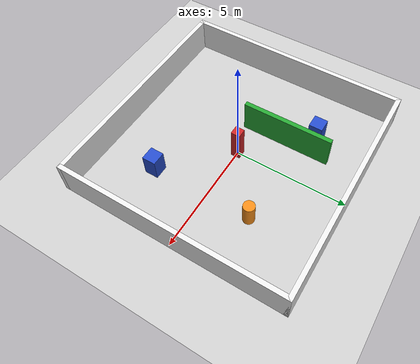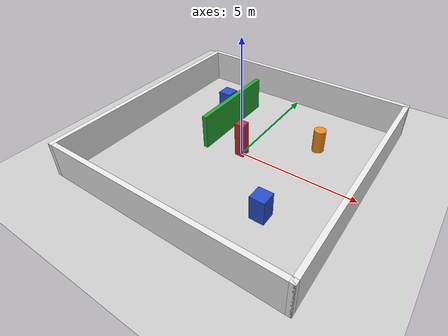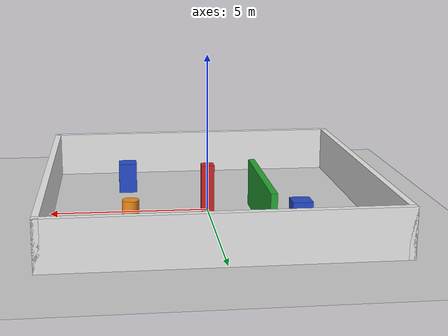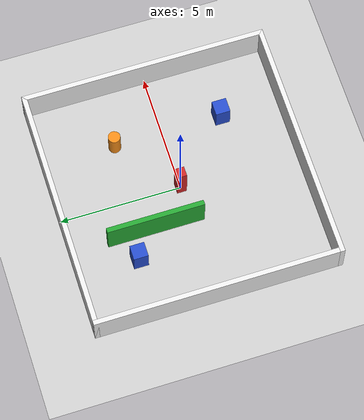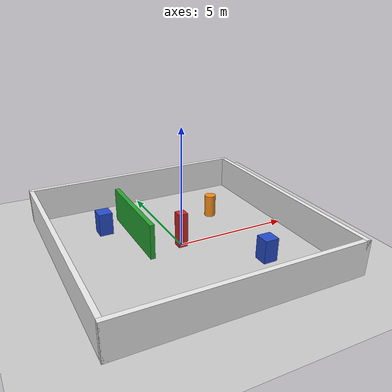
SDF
<?xml version="1.0"?>
<sdf version="1.6">
  <world name="slam_world">

    <!-- ========== Lighting ========== -->
    <light name="sun" type="directional">
      <cast_shadows>true</cast_shadows>
      <pose>0 0 10 0 0 0</pose>
      <diffuse>0.8 0.8 0.8 1</diffuse>
      <specular>0.2 0.2 0.2 1</specular>
      <direction>-0.5 0.1 -0.9</direction>
    </light>

    <!-- ========== Ground plane ========== -->
    <model name="ground_plane">
      <static>true</static>
      <link name="link">
        <collision name="collision">
          <geometry><plane><normal>0 0 1</normal></plane></geometry>
          <surface>
            <friction><ode><mu>100</mu><mu2>50</mu2></ode></friction>
          </surface>
        </collision>
        <visual name="visual">
          <geometry><plane><normal>0 0 1</normal><size>100 100</size></plane></geometry>
          <material>
            <script>
              <uri>file://media/materials/scripts/gazebo.material</uri>
              <name>Gazebo/Grey</name>
            </script>
          </material>
        </visual>
      </link>
    </model>

    <!-- South wall  (y = -5) -->
    <model name="wall_south">
      <static>true</static>
      <pose>0 -5 0.75 0 0 0</pose>
      <link name="link">
        <collision name="collision">
          <geometry><box><size>10.2 0.2 1.5</size></box></geometry>
        </collision>
        <visual name="visual">
          <geometry><box><size>10.2 0.2 1.5</size></box></geometry>
          <material><script><uri>file://media/materials/scripts/gazebo.material</uri>
            <name>Gazebo/White</name></script></material>
        </visual>
      </link>
    </model>

    <!-- North wall  (y = +5) -->
    <model name="wall_north">
      <static>true</static>
      <pose>0 5 0.75 0 0 0</pose>
      <link name="link">
        <collision name="collision">
          <geometry><box><size>10.2 0.2 1.5</size></box></geometry>
        </collision>
        <visual name="visual">
          <geometry><box><size>10.2 0.2 1.5</size></box></geometry>
          <material><script><uri>file://media/materials/scripts/gazebo.material</uri>
            <name>Gazebo/White</name></script></material>
        </visual>
      </link>
    </model>

    <!-- West wall  (x = -5) -->
    <model name="wall_west">
      <static>true</static>
      <pose>-5 0 0.75 0 0 0</pose>
      <link name="link">
        <collision name="collision">
          <geometry><box><size>0.2 10.2 1.5</size></box></geometry>
        </collision>
        <visual name="visual">
          <geometry><box><size>0.2 10.2 1.5</size></box></geometry>
          <material><script><uri>file://media/materials/scripts/gazebo.material</uri>
            <name>Gazebo/White</name></script></material>
        </visual>
      </link>
    </model>

    <!-- East wall  (x = +5) -->
    <model name="wall_east">
      <static>true</static>
      <pose>5 0 0.75 0 0 0</pose>
      <link name="link">
        <collision name="collision">
          <geometry><box><size>0.2 10.2 1.5</size></box></geometry>
        </collision>
        <visual name="visual">
          <geometry><box><size>0.2 10.2 1.5</size></box></geometry>
          <material><script><uri>file://media/materials/scripts/gazebo.material</uri>
            <name>Gazebo/White</name></script></material>
        </visual>
      </link>
    </model>

    <!-- Central pillar -->
    <model name="pillar_centre">
      <static>true</static>
      <pose>0 0 0.75 0 0 0</pose>
      <link name="link">
        <collision name="collision">
          <geometry><box><size>0.4 0.4 1.5</size></box></geometry>
        </collision>
        <visual name="visual">
          <geometry><box><size>0.4 0.4 1.5</size></box></geometry>
          <material><script><uri>file://media/materials/scripts/gazebo.material</uri>
            <name>Gazebo/Red</name></script></material>
        </visual>
      </link>
    </model>

    <!-- Box obstacle — NW quadrant -->
    <model name="box_nw">
      <static>true</static>
      <pose>-2.5 2.5 0.5 0 0 0</pose>
      <link name="link">
        <collision name="collision">
          <geometry><box><size>0.6 0.6 1.0</size></box></geometry>
        </collision>
        <visual name="visual">
          <geometry><box><size>0.6 0.6 1.0</size></box></geometry>
          <material><script><uri>file://media/materials/scripts/gazebo.material</uri>
            <name>Gazebo/Blue</name></script></material>
        </visual>
      </link>
    </model>

    <!-- Box obstacle — SE quadrant -->
    <model name="box_se">
      <static>true</static>
      <pose>2.5 -2.5 0.5 0 0 0</pose>
      <link name="link">
        <collision name="collision">
          <geometry><box><size>0.6 0.6 1.0</size></box></geometry>
        </collision>
        <visual name="visual">
          <geometry><box><size>0.6 0.6 1.0</size></box></geometry>
          <material><script><uri>file://media/materials/scripts/gazebo.material</uri>
            <name>Gazebo/Blue</name></script></material>
        </visual>
      </link>
    </model>

    <!-- Horizontal inner wall — splits the room roughly in half
         with a gap on the east side so the robot can pass through -->
    <model name="inner_wall">
      <static>true</static>
      <pose>-1.5 1.5 0.75 0 0 1.5708</pose>
      <link name="link">
        <collision name="collision">
          <geometry><box><size>4.0 0.2 1.5</size></box></geometry>
        </collision>
        <visual name="visual">
          <geometry><box><size>4.0 0.2 1.5</size></box></geometry>
          <material><script><uri>file://media/materials/scripts/gazebo.material</uri>
            <name>Gazebo/Green</name></script></material>
        </visual>
      </link>
    </model>

    <!-- Cylinder obstacle — gives curved LiDAR returns, good for testing -->
    <model name="cylinder_obs">
      <static>true</static>
      <pose>2.5 2.0 0.5 0 0 0</pose>
      <link name="link">
        <collision name="collision">
          <geometry><cylinder><radius>0.25</radius><length>1.0</length></cylinder></geometry>
        </collision>
        <visual name="visual">
          <geometry><cylinder><radius>0.25</radius><length>1.0</length></cylinder></geometry>
          <material><script><uri>file://media/materials/scripts/gazebo.material</uri>
            <name>Gazebo/Orange</name></script></material>
        </visual>
      </link>
    </model>

    <!-- Physics settings -->
    <physics type="ode">
      <real_time_update_rate>1000.0</real_time_update_rate>
      <max_step_size>0.001</max_step_size>
      <real_time_factor>1</real_time_factor>
    </physics>

  </world>
</sdf>
